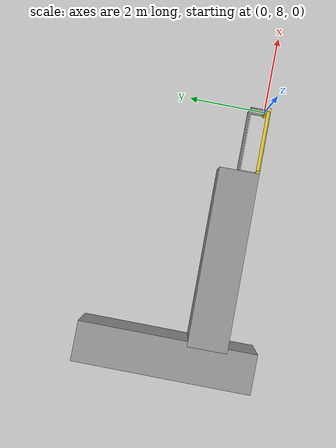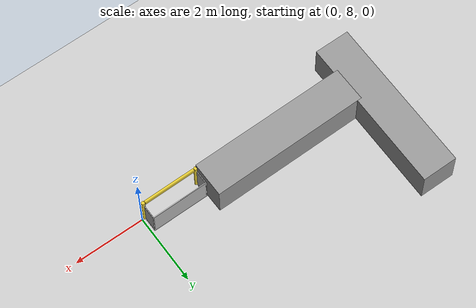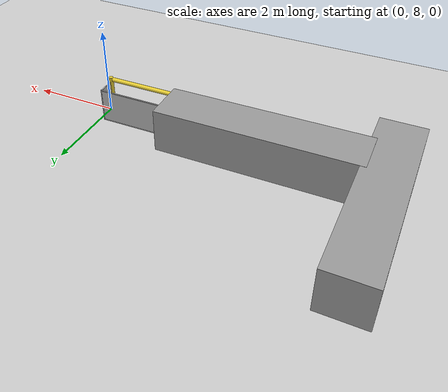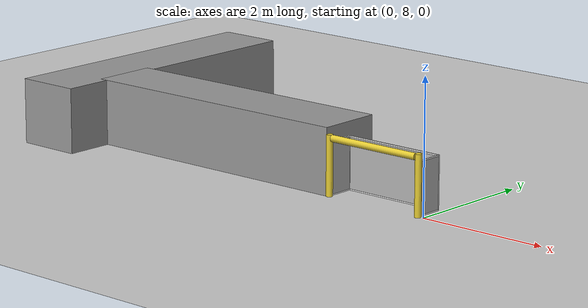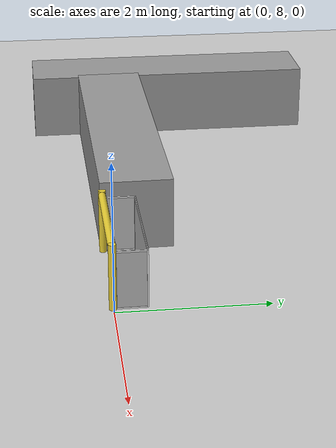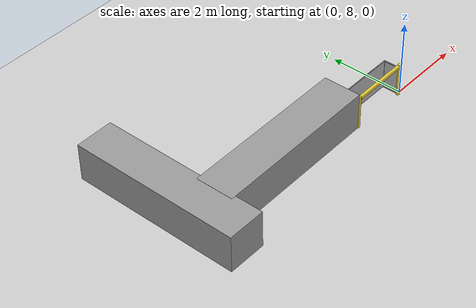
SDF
<sdf version="1.6">
 <world name="default">
  <model name="ground_plane">
   <static>1</static>
   <link name="link">
    <collision name="collision">
     <geometry><plane><normal>0 0 1</normal><size>100 100</size></plane></geometry>
     <surface><friction><ode><mu>100</mu><mu2>50</mu2></ode></friction></surface>
    </collision>
    <visual name="visual">
     <cast_shadows>0</cast_shadows>
     <geometry><plane><normal>0 0 1</normal><size>100 100</size></plane></geometry>
     <material>
      <script><uri>file://media/materials/scripts/gazebo.material</uri><name>Gazebo/Grey</name></script>
     </material>
    </visual>
   </link>
  </model>
  <model name="RoboCup 2014 SPL Goal_clone_0">
   <static>1</static>
   <link name="left_post">
    <pose>0 0.8 0.45 0 -0 0</pose>
    <collision name="collision">
     <geometry><cylinder><radius>0.05</radius><length>0.9</length></cylinder></geometry>
    </collision>
    <visual name="visual">
     <geometry><cylinder><radius>0.05</radius><length>0.9</length></cylinder></geometry>
     <material>
      <script><uri>file://media/materials/scripts/gazebo.material</uri><name>Gazebo/ZincYellow</name></script>
     </material>
    </visual>
   </link>
   <link name="left_support_horiz_lower">
    <pose>0.24 0.8 0.01 0 -0 0</pose>
    <collision name="collision"><geometry><box><size>0.38 0.02 0.02</size></box></geometry></collision>
    <visual name="visual">
     <geometry><box><size>0.38 0.02 0.02</size></box></geometry>
     <material>
      <script><uri>file://media/materials/scripts/gazebo.material</uri><name>Gazebo/White</name></script>
     </material>
    </visual>
   </link>
   <link name="left_support_horiz_upper">
    <pose>0.24 0.8 0.79 0 -0 0</pose>
    <collision name="collision"><geometry><box><size>0.38 0.02 0.02</size></box></geometry></collision>
    <visual name="visual">
     <geometry><box><size>0.38 0.02 0.02</size></box></geometry>
     <material>
      <script><uri>file://media/materials/scripts/gazebo.material</uri><name>Gazebo/White</name></script>
     </material>
    </visual>
   </link>
   <link name="left_support_vertical">
    <pose>0.44 0.8 0.4 3.14159 1.57079 3.14159</pose>
    <collision name="collision"><geometry><box><size>0.8 0.02 0.02</size></box></geometry></collision>
    <visual name="visual">
     <geometry><box><size>0.8 0.02 0.02</size></box></geometry>
     <material>
      <script><uri>file://media/materials/scripts/gazebo.material</uri><name>Gazebo/White</name></script>
     </material>
    </visual>
   </link>
   <link name="right_support_horiz_lower">
    <pose>0.24 -0.8 0.01 0 -0 0</pose>
    <collision name="collision"><geometry><box><size>0.38 0.02 0.02</size></box></geometry></collision>
    <visual name="visual">
     <geometry><box><size>0.38 0.02 0.02</size></box></geometry>
     <material>
      <script><uri>file://media/materials/scripts/gazebo.material</uri><name>Gazebo/White</name></script>
     </material>
    </visual>
   </link>
   <link name="right_support_horiz_upper">
    <pose>0.24 -0.8 0.79 0 -0 0</pose>
    <collision name="collision"><geometry><box><size>0.38 0.02 0.02</size></box></geometry></collision>
    <visual name="visual">
     <geometry><box><size>0.38 0.02 0.02</size></box></geometry>
     <material>
      <script><uri>file://media/materials/scripts/gazebo.material</uri><name>Gazebo/White</name></script>
     </material>
    </visual>
   </link>
   <link name="right_support_vertical">
    <pose>0.44 -0.8 0.4 3.14159 1.57079 3.14159</pose>
    <collision name="collision"><geometry><box><size>0.8 0.02 0.02</size></box></geometry></collision>
    <visual name="visual">
     <geometry><box><size>0.8 0.02 0.02</size></box></geometry>
     <material>
      <script><uri>file://media/materials/scripts/gazebo.material</uri><name>Gazebo/White</name></script>
     </material>
    </visual>
   </link>
   <link name="center_support_horiz_lower">
    <pose>0.44 0 0.01 3.14159 1.57079 3.14159</pose>
    <collision name="collision"><geometry><box><size>0.02 1.58 0.02</size></box></geometry></collision>
    <visual name="visual">
     <geometry><box><size>0.02 1.58 0.02</size></box></geometry>
     <material>
      <script><uri>file://media/materials/scripts/gazebo.material</uri><name>Gazebo/White</name></script>
     </material>
    </visual>
   </link>
   <link name="center_support_horiz_upper">
    <pose>0.44 0 0.79 3.14159 1.57079 3.14159</pose>
    <collision name="collision"><geometry><box><size>0.02 1.58 0.02</size></box></geometry></collision>
    <visual name="visual">
     <geometry><box><size>0.02 1.58 0.02</size></box></geometry>
     <material>
      <script><uri>file://media/materials/scripts/gazebo.material</uri><name>Gazebo/White</name></script>
     </material>
    </visual>
   </link>
   <link name="right_post">
    <pose>0 -0.8 0.45 0 -0 0</pose>
    <collision name="collision">
     <geometry><cylinder><radius>0.05</radius><length>0.9</length></cylinder></geometry>
    </collision>
    <visual name="visual">
     <geometry><cylinder><radius>0.05</radius><length>0.9</length></cylinder></geometry>
     <material>
      <script><uri>file://media/materials/scripts/gazebo.material</uri><name>Gazebo/ZincYellow</name></script>
     </material>
    </visual>
   </link>
   <link name="crossbar">
    <pose>0 0 0.85 1.57 1.57 0</pose>
    <collision name="collision">
     <geometry><cylinder><radius>0.05</radius><length>1.5</length></cylinder></geometry>
    </collision>
    <visual name="visual">
     <geometry><cylinder><radius>0.05</radius><length>1.5</length></cylinder></geometry>
     <material>
      <script><uri>file://media/materials/scripts/gazebo.material</uri><name>Gazebo/ZincYellow</name></script>
     </material>
    </visual>
   </link>
   <link name="center_net">
    <pose>0.44 0 0.4 0 -0 0</pose>
    <collision name="collision"><geometry><box><size>0.01 1.6 0.8</size></box></geometry></collision>
    <visual name="visual">
     <geometry><box><size>0.01 1.6 0.8</size></box></geometry>
     <material>
      <script>
       <uri>model://robocup09_spl_field/materials/scripts/</uri>
       <uri>model://robocup09_spl_field/materials/textures/</uri>
       <name>RoboCup/Net</name>
      </script>
     </material>
    </visual>
   </link>
   <link name="left_net">
    <pose>0.24 0.8 0.4 0 -0 0</pose>
    <collision name="collision"><geometry><box><size>0.38 0.01 0.76</size></box></geometry></collision>
    <visual name="visual">
     <geometry><box><size>0.38 0.01 0.76</size></box></geometry>
     <material>
      <script>
       <uri>model://robocup09_spl_field/materials/scripts/</uri>
       <uri>model://robocup09_spl_field/materials/textures/</uri>
       <name>RoboCup/Net</name>
      </script>
     </material>
    </visual>
   </link>
   <link name="right_net">
    <pose>0.24 -0.8 0.4 0 -0 0</pose>
    <collision name="collision"><geometry><box><size>0.38 0.01 0.76</size></box></geometry></collision>
    <visual name="visual">
     <geometry><box><size>0.38 0.01 0.76</size></box></geometry>
     <material>
      <script>
       <uri>model://robocup09_spl_field/materials/scripts/</uri>
       <uri>model://robocup09_spl_field/materials/textures/</uri>
       <name>RoboCup/Net</name>
      </script>
     </material>
    </visual>
   </link>
   <pose>-0.893461 7.98771 0 0 -0 1.57607</pose>
  </model>
  <model name="unit_box_0_clone_0_0_clone_clone">
   <link name="link">
    <inertial>
     <mass>1</mass>
     <inertia>
      <ixx>0.166667</ixx>
      <ixy>0</ixy>
      <ixz>0</ixz>
      <iyy>0.166667</iyy>
      <iyz>0</iyz>
      <izz>0.166667</izz>
     </inertia>
    </inertial>
    <visual name="visual">
     <geometry><box><size>1 4.48154 1</size></box></geometry>
     <material>
      <script><name>Gazebo/Grey</name><uri>file://media/materials/scripts/gazebo.material</uri></script>
      <ambient>0.3 0.3 0.3 1</ambient>
      <diffuse>0.7 0.7 0.7 1</diffuse>
      <specular>0.01 0.01 0.01 1</specular>
      <emissive>0 0 0 1</emissive>
     </material>
    </visual>
    <collision name="collision">
     <geometry><box><size>1 4.48154 1</size></box></geometry>
     <surface>
      <friction>
       <ode><mu>1</mu><mu2>1</mu2><fdir1>0 0 0</fdir1><slip1>0</slip1><slip2>0</slip2></ode>
       <torsional>
        <coefficient>1</coefficient>
        <patch_radius>0</patch_radius>
        <surface_radius>0</surface_radius>
        <use_patch_radius>1</use_patch_radius>
        <ode><slip>0</slip></ode>
       </torsional>
      </friction>
      <bounce><restitution_coefficient>0</restitution_coefficient><threshold>1e+06</threshold></bounce>
      <contact>
       <collide_without_contact>0</collide_without_contact>
       <collide_without_contact_bitmask>1</collide_without_contact_bitmask>
       <collide_bitmask>1</collide_bitmask>
       <ode>
        <soft_cfm>0</soft_cfm>
        <soft_erp>0.2</soft_erp>
        <kp>1e+13</kp>
        <kd>1</kd>
        <max_vel>0.01</max_vel>
        <min_depth>0</min_depth>
       </ode>
       <bullet>
        <split_impulse>1</split_impulse>
        <split_impulse_penetration_threshold>-0.01</split_impulse_penetration_threshold>
        <soft_cfm>0</soft_cfm>
        <soft_erp>0.2</soft_erp>
        <kp>1e+13</kp>
        <kd>1</kd>
       </bullet>
      </contact>
     </surface>
    </collision>
   </link>
   <static>1</static>
   <pose>-6.58396 9.40617 0.49872 -3.14102 -0 -3e-06</pose>
  </model>
  <model name="unit_box_0_clone_0_0_clone_clone_0_clone_clone_clone_0">
   <link name="link">
    <inertial>
     <mass>1</mass>
     <inertia>
      <ixx>0.166667</ixx>
      <ixy>0</ixy>
      <ixz>0</ixz>
      <iyy>0.166667</iyy>
      <iyz>0</iyz>
      <izz>0.166667</izz>
     </inertia>
    </inertial>
    <visual name="visual">
     <geometry><box><size>1 4.48154 1</size></box></geometry>
     <material>
      <script><name>Gazebo/Grey</name><uri>file://media/materials/scripts/gazebo.material</uri></script>
      <ambient>0.3 0.3 0.3 1</ambient>
      <diffuse>0.7 0.7 0.7 1</diffuse>
      <specular>0.01 0.01 0.01 1</specular>
      <emissive>0 0 0 1</emissive>
     </material>
    </visual>
    <collision name="collision">
     <geometry><box><size>1 4.48154 1</size></box></geometry>
     <surface>
      <friction>
       <ode><mu>1</mu><mu2>1</mu2><fdir1>0 0 0</fdir1><slip1>0</slip1><slip2>0</slip2></ode>
       <torsional>
        <coefficient>1</coefficient>
        <patch_radius>0</patch_radius>
        <surface_radius>0</surface_radius>
        <use_patch_radius>1</use_patch_radius>
        <ode><slip>0</slip></ode>
       </torsional>
      </friction>
      <bounce><restitution_coefficient>0</restitution_coefficient><threshold>1e+06</threshold></bounce>
      <contact>
       <collide_without_contact>0</collide_without_contact>
       <collide_without_contact_bitmask>1</collide_without_contact_bitmask>
       <collide_bitmask>1</collide_bitmask>
       <ode>
        <soft_cfm>0</soft_cfm>
        <soft_erp>0.2</soft_erp>
        <kp>1e+13</kp>
        <kd>1</kd>
        <max_vel>0.01</max_vel>
        <min_depth>0</min_depth>
       </ode>
       <bullet>
        <split_impulse>1</split_impulse>
        <split_impulse_penetration_threshold>-0.01</split_impulse_penetration_threshold>
        <soft_cfm>0</soft_cfm>
        <soft_erp>0.2</soft_erp>
        <kp>1e+13</kp>
        <kd>1</kd>
       </bullet>
      </contact>
     </surface>
    </collision>
   </link>
   <static>1</static>
   <pose>-3.96664 8.43108 0.49975 3.14159 -0.000573 1.58078</pose>
  </model>
 </world>
</sdf>
